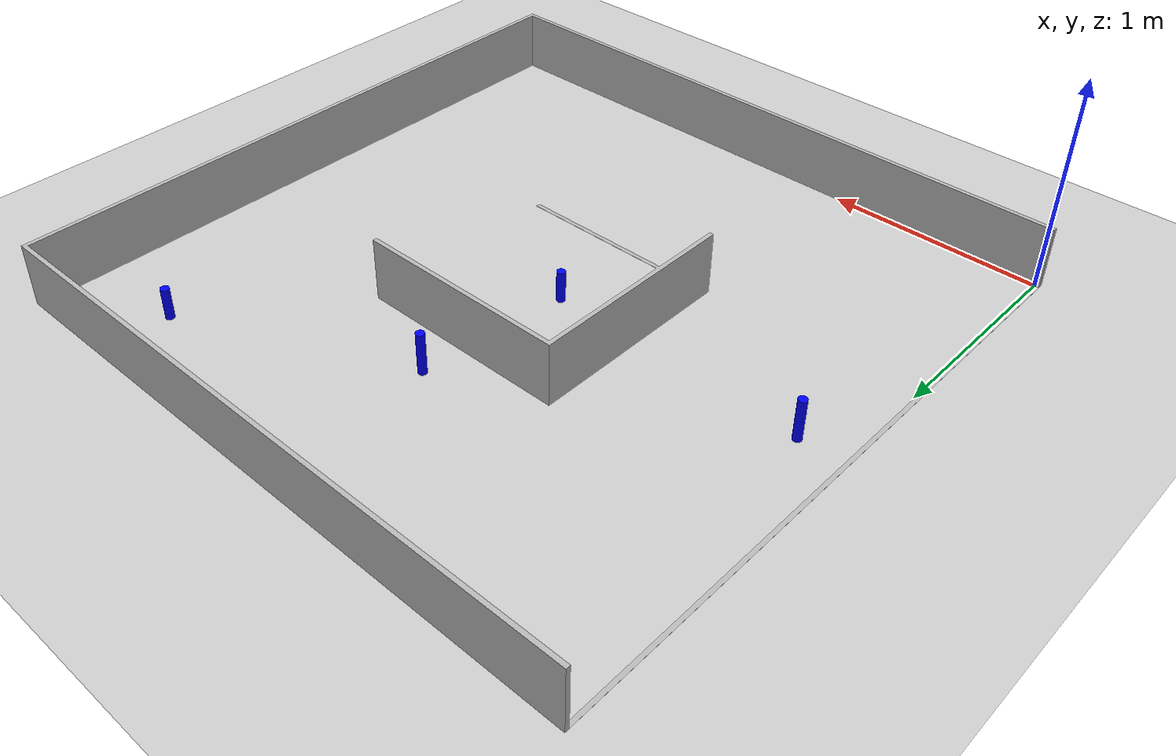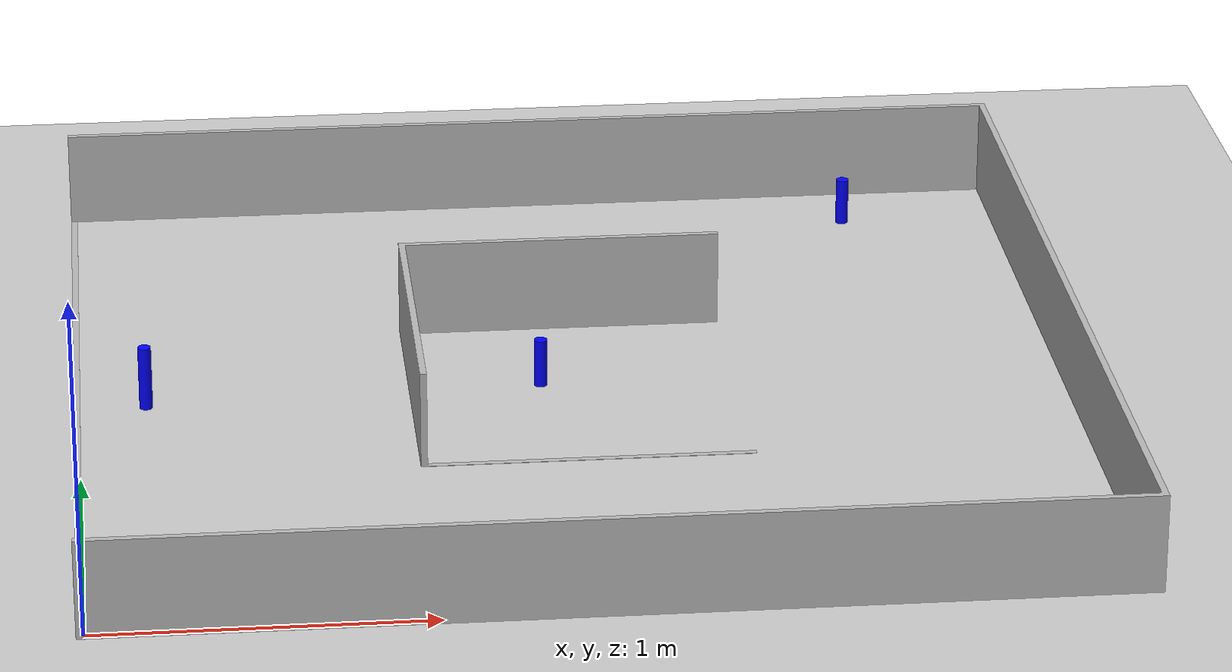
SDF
<?xml version="1.0"?>
<sdf version="1.6">
  <world name="default">
    <physics type="ode">
      <real_time_update_rate>1000.0</real_time_update_rate>
      <max_step_size>0.001</max_step_size>
      <real_time_factor>1</real_time_factor>
      <ode>
        <solver>
          <type>quick</type>
          <iters>150</iters>
          <precon_iters>0</precon_iters>
          <sor>1.400000</sor>
          <use_dynamic_moi_rescaling>1</use_dynamic_moi_rescaling>
        </solver>
        <constraints>
          <cfm>0.00001</cfm>
          <erp>0.2</erp>
          <contact_max_correcting_vel>2000.000000</contact_max_correcting_vel>
          <contact_surface_layer>0.01000</contact_surface_layer>
        </constraints>
      </ode>
    </physics>

    <include>
      <uri>model://ground_plane</uri>
    </include>

    <include>
      <uri>model://sun</uri>
    </include>

    <include>
      <uri>model://my_map</uri>
      <static>true</static>
    </include>

 <!-- Obstacle 1 -->
    <model name="Obstacle1">
      <pose> 0.2 1.5 0.1 0 0 0</pose>
      <static>true</static>

      <link name="link">

        <visual name="visual">
          <geometry>
            <cylinder>
              <radius>0.02</radius>
              <length>0.20</length>
            </cylinder>
          </geometry>
          <material>
            <ambient>0 0 1 1</ambient>
          </material>
        </visual>

        <collision name="collision">
          <geometry>
            <cylinder>
              <radius>0.03</radius>
              <length>0.20</length>
            </cylinder>
          </geometry>

          <surface>
            <friction>
              <ode>
                <mu>10</mu>
                <mu2>10</mu2>
              </ode>
            </friction>
          </surface>

        </collision>

      </link>
    </model>

 <!-- Obstacle 2 -->
    <model name="Obstacle2">
      <pose> 1.5 2.2 0.1 0 0 0</pose>
      <static>true</static>

      <link name="link">

        <visual name="visual">
          <geometry>
            <cylinder>
              <radius>0.02</radius>
              <length>0.20</length>
            </cylinder>
          </geometry>
          <material>
            <ambient>0 0 1 1</ambient>
          </material>
        </visual>

        <collision name="collision">
          <geometry>
            <cylinder>
              <radius>0.03</radius>
              <length>0.20</length>
            </cylinder>
          </geometry>

          <surface>
            <friction>
              <ode>
                <mu>10</mu>
                <mu2>10</mu2>
              </ode>
            </friction>
          </surface>

        </collision>

      </link>
    </model>

 <!-- Obstacle 3 -->
    <model name="Obstacle3">
      <pose> 2.5 2.7 0.1 0 0 0</pose>
      <static>false</static>

      <link name="link">

        <visual name="visual">
          <geometry>
            <cylinder>
              <radius>0.02</radius>
              <length>0.15</length>
            </cylinder>
          </geometry>
          <material>
            <ambient>0 0 1 1</ambient>
          </material>
        </visual>

        <collision name="collision">
          <geometry>
            <cylinder>
              <radius>0.01</radius>
              <length>0.15</length>
            </cylinder>
          </geometry>

          <surface>
            <friction>
              <ode>
                <mu>10</mu>
                <mu2>10</mu2>
              </ode>
            </friction>
          </surface>

        </collision>

      </link>
    </model>

 <!-- Obstacle 4 -->
    <model name="Obstacle4">
      <pose> 1.4 1.5 0.1 0 0 0</pose>
      <static>false</static>

      <link name="link">

        <visual name="visual">
          <geometry>
            <cylinder>
              <radius>0.02</radius>
              <length>0.15</length>
            </cylinder>
          </geometry>
          <material>
            <ambient>0 0 1 1</ambient>
          </material>
        </visual>

        <collision name="collision">
          <geometry>
            <cylinder>
              <radius>0.01</radius>
              <length>0.15</length>
            </cylinder>
          </geometry>

          <surface>
            <friction>
              <ode>
                <mu>10</mu>
                <mu2>10</mu2>
              </ode>
            </friction>
          </surface>

        </collision>

      </link>
    </model>

  </world>
</sdf>

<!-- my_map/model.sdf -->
<sdf version="1.6">
  <model name="my_map">
    <static>true</static>
    <link name="map_link">

      <visual name="map_visual">
        <geometry>
          <mesh>
            <uri>model://my_map/meshes/Experiment_4_map.STL</uri>
            <scale>0.001 0.001 0.001</scale>  <!-- Scaled down from solidworks -->
          </mesh>
        </geometry>
      </visual>

      <collision name="map_collision">
        <geometry>
          <mesh>
            <uri>model://my_map/meshes/Experiment_4_map.STL</uri>
            <scale>0.001 0.001 0.001</scale>
          </mesh>
        </geometry>
      </collision>

    </link>
  </model>
</sdf>
